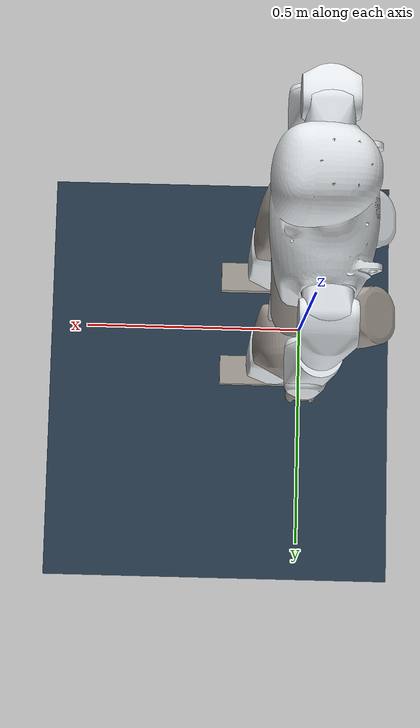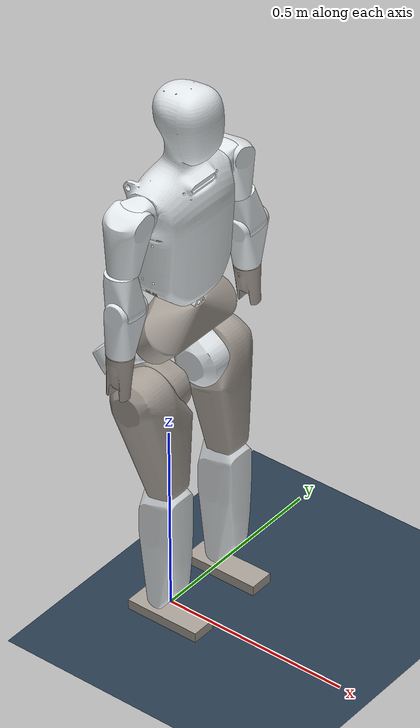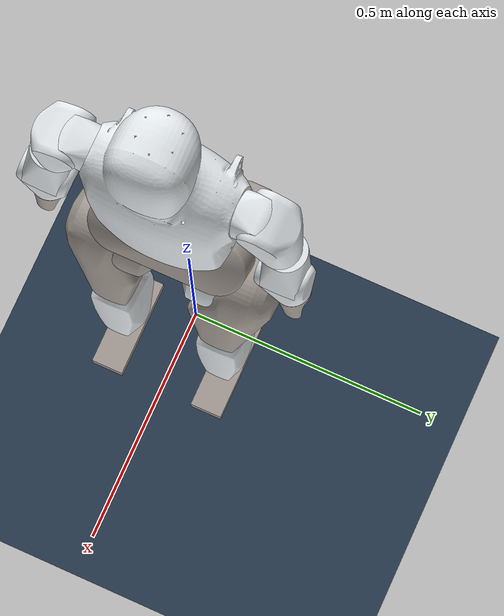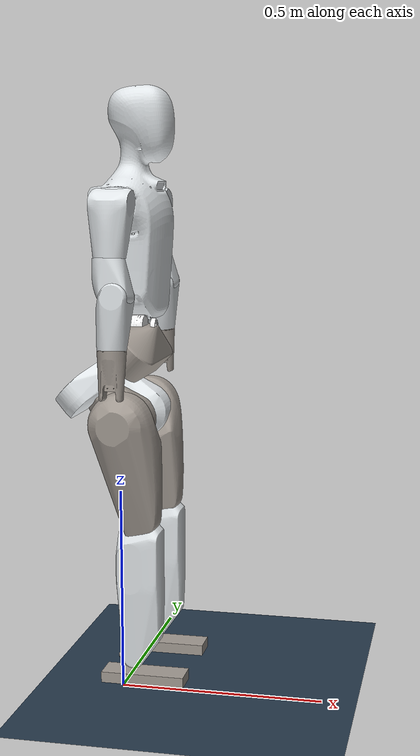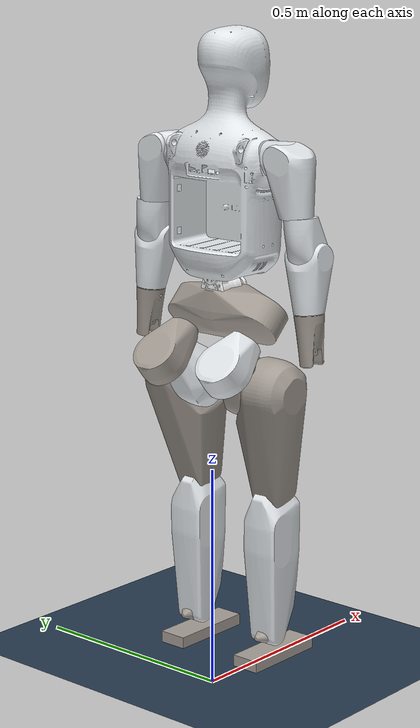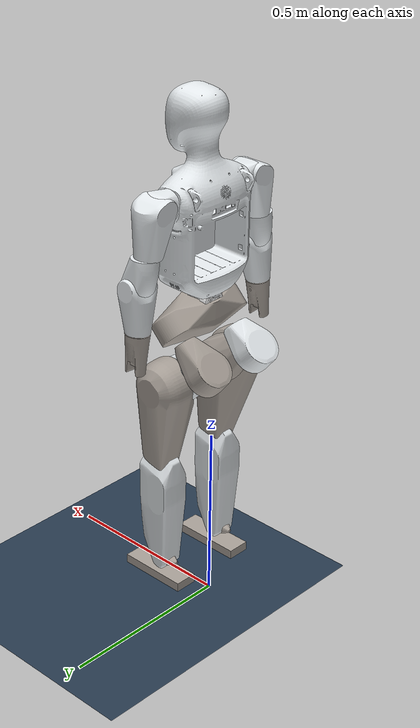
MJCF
<mujoco model="e1_1028">
  <compiler angle="radian" meshdir="../meshes/"/>

  <default>
    <joint damping="0.001" armature="0.03" frictionloss="0.1"/>
  </default>

  <asset>
    <texture type="skybox" builtin="gradient" rgb1="0.3 0.5 0.7" rgb2="0 0 0" width="512" height="512"/>
    <texture name="texplane" type="2d" builtin="checker" rgb1=".2 .3 .4" rgb2=".1 0.15 0.2"
        width="512" height="512" mark="cross" markrgb=".8 .8 .8"/>

    <material name="matplane" reflectance="0." texture="texplane" texrepeat="1 1" texuniform="true"/>
    <mesh name="base_link" file="base_link.STL"/>
    <mesh name="waist_yaw_link" file="waist_yaw_link.STL"/>
    <mesh name="waist_roll_link" file="waist_roll_link.STL"/>
    <mesh name="r_arm_shoulder_pitch_link" file="r_arm_shoulder_pitch_link.STL"/>
    <mesh name="r_arm_shoulder_roll_link" file="r_arm_shoulder_roll_link.STL"/>
    <mesh name="r_arm_shoulder_yaw_link" file="r_arm_shoulder_yaw_link.STL"/>
    <mesh name="r_arm_elbow_pitch_link" file="r_arm_elbow_pitch_link.STL"/>
    <mesh name="r_arm_elbow_yaw_link" file="r_arm_elbow_yaw_link.STL"/>
    <mesh name="l_arm_shoulder_pitch_link" file="l_arm_shoulder_pitch_link.STL"/>
    <mesh name="l_arm_shoulder_roll_link" file="l_arm_shoulder_roll_link.STL"/>
    <mesh name="l_arm_shoulder_yaw_link" file="l_arm_shoulder_yaw_link.STL"/>
    <mesh name="l_arm_elbow_pitch_link" file="l_arm_elbow_pitch_link.STL"/>
    <mesh name="l_arm_elbow_yaw_link" file="l_arm_elbow_yaw_link.STL"/>
    <mesh name="r_leg_hip_yaw_link" file="r_leg_hip_yaw_link.STL"/>
    <mesh name="r_leg_hip_roll_link" file="r_leg_hip_roll_link.STL"/>
    <mesh name="r_leg_hip_pitch_link" file="r_leg_hip_pitch_link.STL"/>
    <mesh name="r_leg_knee_link" file="r_leg_knee_link.STL"/>
    <mesh name="r_leg_ankle_pitch_link" file="r_leg_ankle_pitch_link.STL"/>
    <mesh name="r_leg_ankle_roll_link" file="r_leg_ankle_roll_link.STL"/>
    <mesh name="l_leg_hip_yaw_link" file="l_leg_hip_yaw_link.STL"/>
    <mesh name="l_leg_hip_roll_link" file="l_leg_hip_roll_link.STL"/>
    <mesh name="l_leg_hip_pitch_link" file="l_leg_hip_pitch_link.STL"/>
    <mesh name="l_leg_knee_link" file="l_leg_knee_link.STL"/>
    <mesh name="l_leg_ankle_pitch_link" file="l_leg_ankle_pitch_link.STL"/>
    <mesh name="l_leg_ankle_roll_link" file="l_leg_ankle_roll_link.STL"/>
  </asset>

  <worldbody>
    <light directional="true" diffuse=".4 .4 .4" specular="0.1 0.1 0.1" pos="0 0 5.0" dir="0 0 -1" castshadow="false"/>
    <light directional="true" diffuse=".6 .6 .6" specular="0.2 0.2 0.2" pos="0 0 4" dir="0 0 -1"/>
    <geom name="ground" type="plane" size="0 0 1" pos="0.001 0 0" quat="1 0 0 0" material="matplane" condim="1" conaffinity='15'/>
    <body name="base_link" pos='0.0 0 0.85'>
      <inertial pos="0.042586 -6.9996e-07 -0.0037765" quat="0.651255 0.651248 -0.275453 0.275444" mass="2.9971" diaginertia="0.00765288 0.00586742 0.0027293"/>
      <freejoint name="root" />
      <site name='imu' size='0.01' pos='0.0 0 0.0'/>
      <geom type="mesh" rgba="0.65098 0.61961 0.58824 1" mesh="base_link"/>

      <body name="l_leg_hip_yaw_link" pos="0.027892 0.09 -0.02504" quat="0.923858 0 0.382735 0">
        <inertial pos="-0.016826 2.7533e-05 -0.06709" quat="0.999961 0.00834258 -0.00276357 -0.000263055" mass="1.2996" diaginertia="0.00217423 0.00126323 0.00115244"/>
        <joint name="l_leg_hip_yaw_joint" pos="0 0 0" axis="0 0 1" range="-0.7 0.93" actuatorfrcrange="-80 80"/>
        <geom type="mesh" rgba="0.65098 0.61961 0.58824 1" mesh="l_leg_hip_yaw_link"/>
        <body name="l_leg_hip_roll_link" pos="0.002 0 -0.085">
          <inertial pos="0.084568 -0.016381 -8.1498e-05" quat="0.49319 0.503546 0.50547 0.4977" mass="1.8503" diaginertia="0.00376549 0.00231015 0.00180925"/>
          <joint name="l_leg_hip_roll_joint" pos="0 0 0" axis="1 0 0" range="-0.7 0.61" actuatorfrcrange="-80 80"/>
          <geom type="mesh" rgba="0.89804 0.91765 0.92941 1" mesh="l_leg_hip_roll_link"/>
          <body name="l_leg_hip_pitch_link" pos="0.099 0 0" quat="0.923858 0 -0.382735 0">
            <inertial pos="0.014254 0.041474 -0.042207" quat="0.71035 -0.0870389 -0.0607152 0.695802" mass="3.789" diaginertia="0.0218454 0.0181472 0.00465285"/>
            <joint name="l_leg_hip_pitch_joint" pos="0 0 0" axis="0 1 0" range="-1.48 0.87" actuatorfrcrange="-120 120"/>
            <geom type="mesh" rgba="0.65098 0.61961 0.58824 1" mesh="l_leg_hip_pitch_link"/>
            <body name="l_leg_knee_link" pos="0.022227 0 -0.25403">
              <inertial pos="0.01137 0.018606 -0.12157" quat="0.699809 0.0153198 0.0111107 0.714079" mass="3.4053" diaginertia="0.0184739 0.017641 0.00166949"/>
              <joint name="l_leg_knee_joint" pos="0 0 0" axis="0 1 0" range="0 2.36" actuatorfrcrange="-120 120"/>
              <geom type="mesh" rgba="0.89804 0.91765 0.92941 1" mesh="l_leg_knee_link"/>
              <body name="l_leg_ankle_pitch_link" pos="0 0.01825 -0.315">
                <inertial pos="0 0 0" quat="0.5 0.5 -0.5 0.5" mass="0.059507" diaginertia="1.0067e-05 9.8722e-06 1.7628e-06"/>
                <joint name="l_leg_ankle_pitch_joint" pos="0 0 0" axis="0 1 0" range="-1.01 0.42" actuatorfrcrange="-100 100"/>
                <geom type="mesh" rgba="0.65098 0.619608 0.588235 1" mesh="l_leg_ankle_pitch_link"/>
                <body name="l_leg_ankle_roll_link">
                  <inertial pos="0.0094936 2.704e-06 -0.026734" quat="7.68369e-05 0.70759 6.89337e-05 0.706623" mass="0.85068" diaginertia="0.0012672 0.001197 0.000252548"/>
                  <joint name="l_leg_ankle_roll_joint" pos="0 0 0" axis="1 0 0" range="-0.26 0.26" actuatorfrcrange="-100 100"/>
                  <geom size="0.1 0.0325 0.013" pos="0.025 0.0005 -0.048" type="box" rgba="0.65098 0.61961 0.58824 1"/>
                </body>
              </body>
            </body>
          </body>
        </body>
      </body>

      <body name="r_leg_hip_yaw_link" pos="0.027892 -0.09 -0.02504" quat="0.923858 0 0.382735 0">
        <inertial pos="-0.016826 -2.7533e-05 -0.06709" quat="0.999961 -0.00834258 -0.00276357 0.000263055" mass="1.2996" diaginertia="0.00217423 0.00126323 0.00115244"/>
        <joint name="r_leg_hip_yaw_joint" pos="0 0 0" axis="0 0 1" range="-0.93 0.7" actuatorfrcrange="-80 80"/>
        <geom type="mesh" rgba="0.89804 0.91765 0.92941 1" mesh="r_leg_hip_yaw_link"/>
        <body name="r_leg_hip_roll_link" pos="0.002 0 -0.085">
          <inertial pos="0.084568 0.016381 -8.1498e-05" quat="0.4977 0.50547 0.503546 0.49319" mass="1.8503" diaginertia="0.00376549 0.00231015 0.00180925"/>
          <joint name="r_leg_hip_roll_joint" pos="0 0 0" axis="1 0 0" range="-0.61 0.7" actuatorfrcrange="-80 80"/>
          <geom type="mesh" rgba="0.65098 0.61961 0.58824 1" mesh="r_leg_hip_roll_link"/>
          <body name="r_leg_hip_pitch_link" pos="0.099 0 0" quat="0.923858 0 -0.382735 0">
            <inertial pos="0.014254 -0.041474 -0.042207" quat="0.695802 -0.0607152 -0.0870389 0.71035" mass="3.789" diaginertia="0.0218454 0.0181472 0.00465285"/>
            <joint name="r_leg_hip_pitch_joint" pos="0 0 0" axis="0 1 0" range="-1.48 0.87" actuatorfrcrange="-120 120"/>
            <geom type="mesh" rgba="0.65098 0.61961 0.58824 1" mesh="r_leg_hip_pitch_link"/>
            <body name="r_leg_knee_link" pos="0.022227 0 -0.25403">
              <inertial pos="0.01137 -0.018606 -0.12157" quat="0.714079 0.0111107 0.0153198 0.699809" mass="3.4053" diaginertia="0.0184739 0.017641 0.00166949"/>
              <joint name="r_leg_knee_joint" pos="0 0 0" axis="0 1 0" range="0 2.36" actuatorfrcrange="-120 120"/>
              <geom type="mesh" rgba="0.89804 0.91765 0.92941 1" mesh="r_leg_knee_link"/>
              <body name="r_leg_ankle_pitch_link" pos="0 -0.01825 -0.315">
                <inertial pos="0 0 0" quat="0.5 0.5 -0.5 0.5" mass="0.059507" diaginertia="1.0067e-05 9.8722e-06 1.7628e-06"/>
                <joint name="r_leg_ankle_pitch_joint" pos="0 0 0" axis="0 1 0" range="-1.01 0.42" actuatorfrcrange="-100 100"/>
                <geom type="mesh" rgba="0.65098 0.61961 0.58824 1" mesh="r_leg_ankle_pitch_link"/>
                <body name="r_leg_ankle_roll_link">
                  <inertial pos="0.0094936 -2.704e-06 -0.026734" quat="-7.68369e-05 0.70759 -6.89337e-05 0.706623" mass="0.85068" diaginertia="0.0012672 0.001197 0.000252548"/>
                  <joint name="r_leg_ankle_roll_joint" pos="0 0 0" axis="1 0 0" range="-0.26 0.26" actuatorfrcrange="-60 60"/>
                  <geom size="0.1 0.0325 0.013" pos="0.025 0.0005 -0.048" type="box" rgba="0.65098 0.61961 0.58824 1"/>
                </body>
              </body>
            </body>
          </body>
        </body>
      </body>

      <body name="waist_yaw_link" pos="0.039315 0 0.027475">
        <inertial pos="-0.004235 2.8036e-05 0.049845" quat="0.791509 0.370764 -0.439731 0.206603" mass="1.006" diaginertia="0.000650297 0.000504947 0.000504596"/>
        <joint name="waist_yaw_joint" pos="0 0 0" axis="0 0 1" range="-1.57 1.57" actuatorfrcrange="-70 70"/>
        <geom type="mesh" rgba="1 1 1 1" mesh="waist_yaw_link"/>
        <body name="waist_roll_link" pos="0 0 0.061" quat="1 0.00069955 0 0">
          <inertial pos="0.006148 0.00014746 0.15123" quat="0.999598 -0.00690173 -0.0274623 -0.00109645" mass="7.1002" diaginertia="0.0562339 0.0353686 0.0320956"/>
          <joint name="waist_roll_joint" pos="0 0 0" axis="1 0 0" range="-0.52 0.52" actuatorfrcrange="-70 70"/>
          <geom type="mesh" rgba="0.89804 0.91765 0.92941 1" mesh="waist_roll_link"/>

          <body name="l_arm_shoulder_pitch_link" pos="-0.00096779 0.10489 0.2532" quat="0.996134 0.0878466 0 0">
            <inertial pos="0.00060309 0.024076 5.413e-05" quat="0.765555 0.0125877 0.0132472 0.643111" mass="1.0941" diaginertia="0.00058781 0.000518266 0.000507164"/>
            <joint name="l_arm_shoulder_pitch_joint" pos="0 0 0" axis="0 1 0" range="-2.84 2.84" actuatorfrcrange="-20 20"/>
            <geom type="mesh" rgba="0.89804 0.91765 0.92941 1" mesh="l_arm_shoulder_pitch_link"/>
            <body name="l_arm_shoulder_roll_link" pos="0 0.062729 0" quat="0.996195 -0.0871493 4.92372e-05 -4.3074e-06">
              <inertial pos="-0.00051493 0.034326 -0.070921" quat="0.988438 0.151588 0.00216373 0.00272628" mass="0.85522" diaginertia="0.000945227 0.000799806 0.000421707"/>
              <joint name="l_arm_shoulder_roll_joint" pos="0 0 0" axis="1 0 0" range="-0.08 2.27" actuatorfrcrange="-20 20"/>
              <geom type="mesh" rgba="0.898039 0.917647 0.929412 1" mesh="l_arm_shoulder_roll_link"/>
              <body name="l_arm_shoulder_yaw_link" pos="-2.8267e-05 0.039606 -0.10383" quat="0.999048 0.0436132 -4.93795e-05 2.15565e-06">
                <inertial pos="0.013235 0.0029162 -0.091422" quat="0.697247 -0.1235 -0.119082 0.695999" mass="0.68623" diaginertia="0.000757789 0.000618004 0.000301217"/>
                <joint name="l_arm_shoulder_yaw_joint" pos="0 0 0" axis="0 0 1" range="-2.62 2.62" actuatorfrcrange="-20 20"/>
                <geom type="mesh" rgba="0.898039 0.917647 0.929412 1" mesh="l_arm_shoulder_yaw_link"/>
                <body name="l_arm_elbow_pitch_link" pos="0.020023 0.00026895 -0.10514">
                  <inertial pos="-0.009005 -0.00082819 -0.069034" quat="0.703932 0.0307177 0.0396965 0.708491" mass="0.67928" diaginertia="0.000699546 0.000610738 0.000325136"/>
                  <joint name="l_arm_elbow_pitch_joint" pos="0 0 0" axis="0 1 0" range="-2.44 0" actuatorfrcrange="-20 20"/>
                  <geom type="mesh" rgba="0.898039 0.917647 0.929412 1" mesh="l_arm_elbow_pitch_link"/>
                  <body name="l_arm_elbow_yaw_link" pos="-0.0099976 -0.0004785 -0.11136">
                    <inertial pos="0.0025569 -0.0017155 -0.1146" quat="0.717672 -0.053547 0.0126425 0.694205" mass="0.68401" diaginertia="0.00108114 0.000932248 0.000362549"/>
                    <joint name="l_arm_elbow_yaw_joint" pos="0 0 0" axis="0 0 1" range="-2.8 2.8" actuatorfrcrange="-20 20"/>
                    <geom type="mesh" rgba="0.65098 0.619608 0.588235 1" mesh="l_arm_elbow_yaw_link"/>
                  </body>
                </body>
              </body>
            </body>
          </body>

          <body name="r_arm_shoulder_pitch_link" pos="-0.00096779 -0.10489 0.2532" quat="0.996134 -0.0878466 0 0">
            <inertial pos="0.00060309 -0.024076 5.413e-05" quat="0.643111 0.0132472 0.0125877 0.765555" mass="1.0941" diaginertia="0.00058781 0.000518266 0.000507164"/>
            <joint name="r_arm_shoulder_pitch_joint" pos="0 0 0" axis="0 1 0" range="-2.84 2.84" actuatorfrcrange="-20 20"/>
            <geom type="mesh" rgba="0.89804 0.91765 0.92941 1" mesh="r_arm_shoulder_pitch_link"/>
            <body name="r_arm_shoulder_roll_link" pos="0 -0.062729 0" quat="0.996195 0.0871493 4.92397e-05 4.30718e-06">
              <inertial pos="-0.00051493 -0.034326 -0.070921" quat="0.988438 -0.151588 0.00216373 -0.00272628" mass="0.85522" diaginertia="0.000945227 0.000799806 0.000421707"/>
              <joint name="r_arm_shoulder_roll_joint" pos="0 0 0" axis="1 0 0" range="-2.27 0.08" actuatorfrcrange="-20 20"/>
              <geom type="mesh" rgba="0.89804 0.91765 0.92941 1" mesh="r_arm_shoulder_roll_link"/>
              <body name="r_arm_shoulder_yaw_link" pos="-2.8267e-05 -0.039606 -0.10383" quat="0.999048 -0.0436132 -4.93795e-05 -2.15565e-06">
                <inertial pos="0.013235 -0.0029162 -0.091422" quat="0.695999 -0.119082 -0.1235 0.697247" mass="0.68623" diaginertia="0.000757789 0.000618004 0.000301217"/>
                <joint name="r_arm_shoulder_yaw_joint" pos="0 0 0" axis="0 0 1" range="-2.62 2.62" actuatorfrcrange="-20 20"/>
                <geom type="mesh" rgba="0.89804 0.91765 0.92941 1" mesh="r_arm_shoulder_yaw_link"/>
                <body name="r_arm_elbow_pitch_link" pos="0.020023 -0.00026895 -0.10514">
                  <inertial pos="-0.009005 0.00082819 -0.069034" quat="0.708491 0.0396965 0.0307177 0.703932" mass="0.67928" diaginertia="0.000699546 0.000610738 0.000325136"/>
                  <joint name="r_arm_elbow_pitch_joint" pos="0 0 0" axis="0 1 0" range="-2.44 0" actuatorfrcrange="-20 20"/>
                  <geom type="mesh" rgba="0.89804 0.91765 0.92941 1" mesh="r_arm_elbow_pitch_link"/>
                  <body name="r_arm_elbow_yaw_link" pos="-0.0099976 0.0004785 -0.11136">
                    <inertial pos="0.0025569 0.0017155 -0.1146" quat="0.694205 0.0126425 -0.053547 0.717672" mass="0.68401" diaginertia="0.00108114 0.000932248 0.000362549"/>
                    <joint name="r_arm_elbow_yaw_joint" pos="0 0 0" axis="0 0 1" range="-2.8 2.8" actuatorfrcrange="-20 20"/>
                    <geom type="mesh" rgba="0.65098 0.61961 0.58824 1" mesh="r_arm_elbow_yaw_link"/>
                  </body>
                </body>
              </body>
            </body>
          </body>
        </body>
      </body>
    </body>
  </worldbody>

  <actuator>
    <motor name='l_leg_hip_yaw'    	    joint='l_leg_hip_yaw_joint'/>
    <motor name='l_leg_hip_roll'    	  joint='l_leg_hip_roll_joint'/>
    <motor name='l_leg_hip_pitch'  	    joint='l_leg_hip_pitch_joint'/>
    <motor name='l_leg_knee'    	      joint='l_leg_knee_joint'/>
    <motor name='l_leg_ankle_pitch'     joint='l_leg_ankle_pitch_joint'/>
    <motor name='l_leg_ankle_roll'      joint='l_leg_ankle_roll_joint'/>

    <motor name='r_leg_hip_yaw'    	    joint='r_leg_hip_yaw_joint'/>
    <motor name='r_leg_hip_roll'    	  joint='r_leg_hip_roll_joint'/>
    <motor name='r_leg_hip_pitch'    	  joint='r_leg_hip_pitch_joint'/>
    <motor name='r_leg_knee'    	      joint='r_leg_knee_joint'/>
    <motor name='r_leg_ankle_pitch'     joint='r_leg_ankle_pitch_joint'/>
    <motor name='r_leg_ankle_roll'      joint='r_leg_ankle_roll_joint'/>

    <motor name='waist_yaw'             joint='waist_yaw_joint'/>
    <motor name='waist_roll'            joint='waist_roll_joint'/>

    <motor name='l_arm_shoulder_pitch'  joint='l_arm_shoulder_pitch_joint'/>
    <motor name='l_arm_shoulder_roll'   joint='l_arm_shoulder_roll_joint'/>
    <motor name='l_arm_shoulder_yaw'    joint='l_arm_shoulder_yaw_joint'/>
    <motor name='l_arm_elbow_pitch'     joint='l_arm_elbow_pitch_joint'/>
    <motor name='l_arm_elbow_yaw'       joint='l_arm_elbow_yaw_joint'/>

    <motor name='r_arm_shoulder_pitch'  joint='r_arm_shoulder_pitch_joint'/>
    <motor name='r_arm_shoulder_roll'   joint='r_arm_shoulder_roll_joint'/>
    <motor name='r_arm_shoulder_yaw'    joint='r_arm_shoulder_yaw_joint'/>
    <motor name='r_arm_elbow_pitch'     joint='r_arm_elbow_pitch_joint'/>
    <motor name='r_arm_elbow_yaw'       joint='r_arm_elbow_yaw_joint'/>
  </actuator>

  <sensor>
      <framequat     name='orientation' objtype='site' noise='0.001' objname='imu'/>
      <framepos      name='position' objtype='site' noise='0.001' objname='imu'/>
      <gyro          name='angular-velocity'    site='imu' noise='0.005' cutoff='34.9'/>
      <velocimeter   name='linear-velocity'     site='imu' noise='0.001' cutoff='30'/>
  </sensor>

</mujoco>
